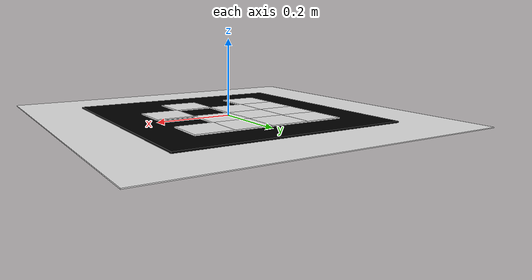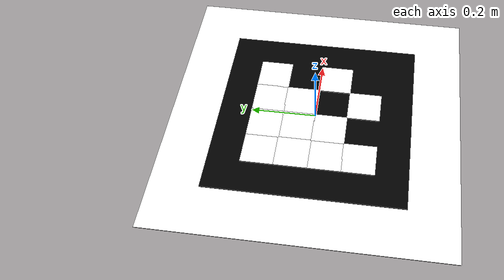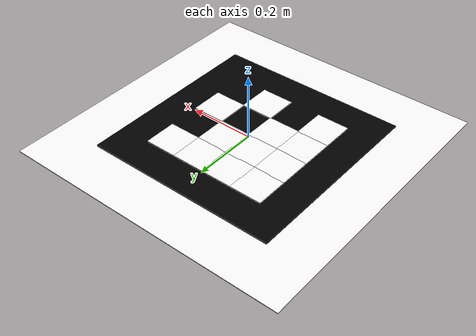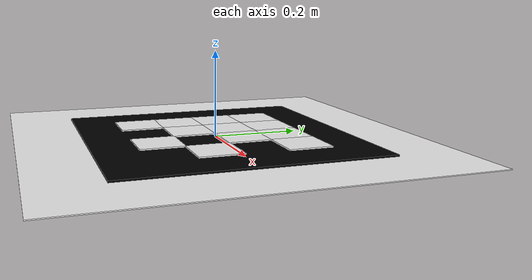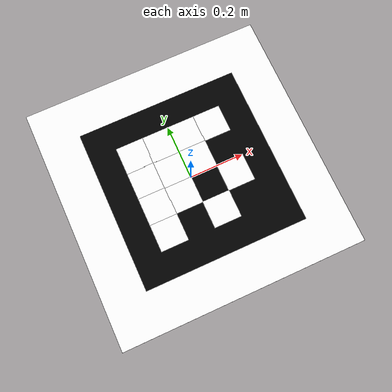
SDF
<?xml version="1.0"?>
<sdf version="1.7">
  <model name="aruco_marker_08">
    <static>true</static>
    <link name="link">

      <visual name="white_outer_board">
        <cast_shadows>false</cast_shadows>
        <pose>0 0 0 0 0 0</pose>
        <geometry>
          <box>
            <size>0.900000 0.900000 0.002000</size>
          </box>
        </geometry>
        <material>
          <ambient>1 1 1 1</ambient>
          <diffuse>1 1 1 1</diffuse>
          <emissive>1 1 1 1</emissive>
        </material>
      </visual>

      <visual name="black_marker_base">
        <cast_shadows>false</cast_shadows>
        <pose>0 0 0.003000 0 0 0</pose>
        <geometry>
          <box>
            <size>0.600000 0.600000 0.004000</size>
          </box>
        </geometry>
        <material>
          <ambient>0 0 0 1</ambient>
          <diffuse>0 0 0 1</diffuse>
          <emissive>0 0 0 1</emissive>
        </material>
      </visual>

      <visual name="white_cell_1_1">
        <cast_shadows>false</cast_shadows>
        <pose>-0.150000 0.150000 0.006500 0 0 0</pose>
        <geometry>
          <box>
            <size>0.102000 0.102000 0.003000</size>
          </box>
        </geometry>
        <material>
          <ambient>1 1 1 1</ambient>
          <diffuse>1 1 1 1</diffuse>
          <emissive>1 1 1 1</emissive>
        </material>
      </visual>

      <visual name="white_cell_1_2">
        <cast_shadows>false</cast_shadows>
        <pose>-0.050000 0.150000 0.006500 0 0 0</pose>
        <geometry>
          <box>
            <size>0.102000 0.102000 0.003000</size>
          </box>
        </geometry>
        <material>
          <ambient>1 1 1 1</ambient>
          <diffuse>1 1 1 1</diffuse>
          <emissive>1 1 1 1</emissive>
        </material>
      </visual>

      <visual name="white_cell_1_3">
        <cast_shadows>false</cast_shadows>
        <pose>0.050000 0.150000 0.006500 0 0 0</pose>
        <geometry>
          <box>
            <size>0.102000 0.102000 0.003000</size>
          </box>
        </geometry>
        <material>
          <ambient>1 1 1 1</ambient>
          <diffuse>1 1 1 1</diffuse>
          <emissive>1 1 1 1</emissive>
        </material>
      </visual>

      <visual name="white_cell_1_4">
        <cast_shadows>false</cast_shadows>
        <pose>0.150000 0.150000 0.006500 0 0 0</pose>
        <geometry>
          <box>
            <size>0.102000 0.102000 0.003000</size>
          </box>
        </geometry>
        <material>
          <ambient>1 1 1 1</ambient>
          <diffuse>1 1 1 1</diffuse>
          <emissive>1 1 1 1</emissive>
        </material>
      </visual>

      <visual name="white_cell_2_1">
        <cast_shadows>false</cast_shadows>
        <pose>-0.150000 0.050000 0.006500 0 0 0</pose>
        <geometry>
          <box>
            <size>0.102000 0.102000 0.003000</size>
          </box>
        </geometry>
        <material>
          <ambient>1 1 1 1</ambient>
          <diffuse>1 1 1 1</diffuse>
          <emissive>1 1 1 1</emissive>
        </material>
      </visual>

      <visual name="white_cell_2_2">
        <cast_shadows>false</cast_shadows>
        <pose>-0.050000 0.050000 0.006500 0 0 0</pose>
        <geometry>
          <box>
            <size>0.102000 0.102000 0.003000</size>
          </box>
        </geometry>
        <material>
          <ambient>1 1 1 1</ambient>
          <diffuse>1 1 1 1</diffuse>
          <emissive>1 1 1 1</emissive>
        </material>
      </visual>

      <visual name="white_cell_2_3">
        <cast_shadows>false</cast_shadows>
        <pose>0.050000 0.050000 0.006500 0 0 0</pose>
        <geometry>
          <box>
            <size>0.102000 0.102000 0.003000</size>
          </box>
        </geometry>
        <material>
          <ambient>1 1 1 1</ambient>
          <diffuse>1 1 1 1</diffuse>
          <emissive>1 1 1 1</emissive>
        </material>
      </visual>

      <visual name="white_cell_3_1">
        <cast_shadows>false</cast_shadows>
        <pose>-0.150000 -0.050000 0.006500 0 0 0</pose>
        <geometry>
          <box>
            <size>0.102000 0.102000 0.003000</size>
          </box>
        </geometry>
        <material>
          <ambient>1 1 1 1</ambient>
          <diffuse>1 1 1 1</diffuse>
          <emissive>1 1 1 1</emissive>
        </material>
      </visual>

      <visual name="white_cell_3_2">
        <cast_shadows>false</cast_shadows>
        <pose>-0.050000 -0.050000 0.006500 0 0 0</pose>
        <geometry>
          <box>
            <size>0.102000 0.102000 0.003000</size>
          </box>
        </geometry>
        <material>
          <ambient>1 1 1 1</ambient>
          <diffuse>1 1 1 1</diffuse>
          <emissive>1 1 1 1</emissive>
        </material>
      </visual>

      <visual name="white_cell_3_4">
        <cast_shadows>false</cast_shadows>
        <pose>0.150000 -0.050000 0.006500 0 0 0</pose>
        <geometry>
          <box>
            <size>0.102000 0.102000 0.003000</size>
          </box>
        </geometry>
        <material>
          <ambient>1 1 1 1</ambient>
          <diffuse>1 1 1 1</diffuse>
          <emissive>1 1 1 1</emissive>
        </material>
      </visual>

      <visual name="white_cell_4_1">
        <cast_shadows>false</cast_shadows>
        <pose>-0.150000 -0.150000 0.006500 0 0 0</pose>
        <geometry>
          <box>
            <size>0.102000 0.102000 0.003000</size>
          </box>
        </geometry>
        <material>
          <ambient>1 1 1 1</ambient>
          <diffuse>1 1 1 1</diffuse>
          <emissive>1 1 1 1</emissive>
        </material>
      </visual>

      <visual name="white_cell_4_3">
        <cast_shadows>false</cast_shadows>
        <pose>0.050000 -0.150000 0.006500 0 0 0</pose>
        <geometry>
          <box>
            <size>0.102000 0.102000 0.003000</size>
          </box>
        </geometry>
        <material>
          <ambient>1 1 1 1</ambient>
          <diffuse>1 1 1 1</diffuse>
          <emissive>1 1 1 1</emissive>
        </material>
      </visual>

    </link>
  </model>
</sdf>
